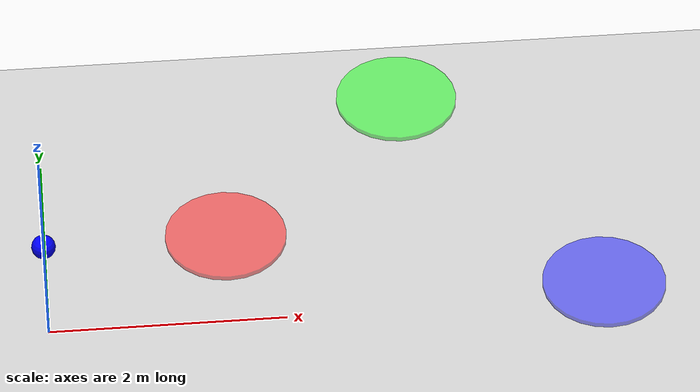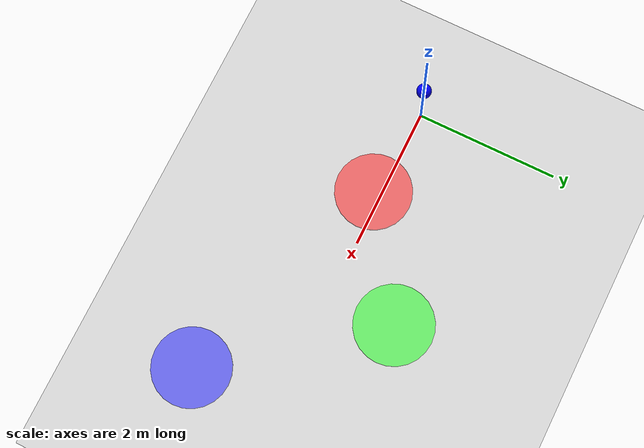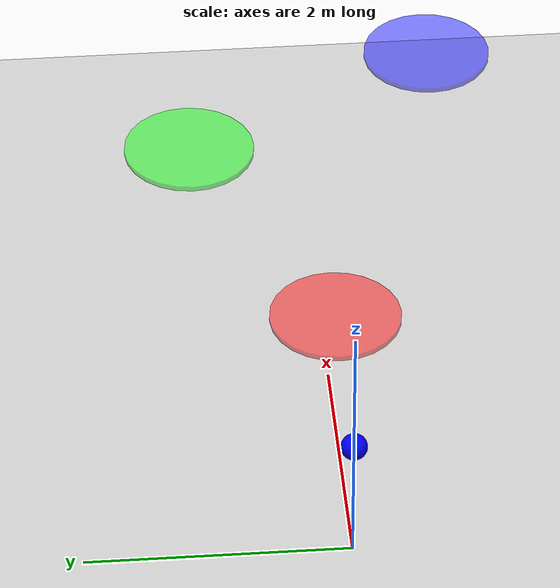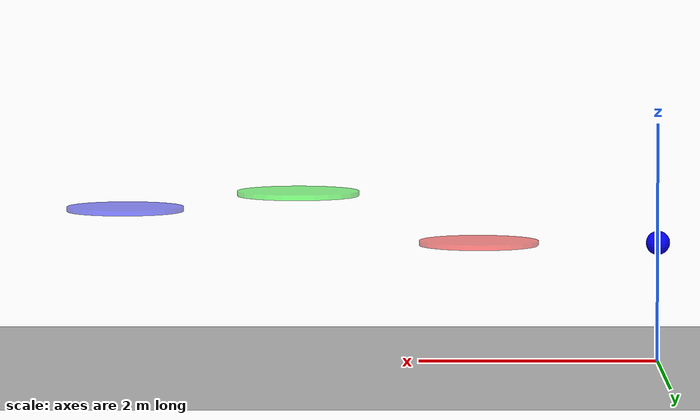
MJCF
# gate_world.xml

<mujoco model="skydio_gate">
    <compiler angle="degree" coordinate="local"/>
    <option gravity="0 0 -9.81"/>

    <worldbody>
        <!-- Ground -->
        <geom name="floor" type="plane" size="10 10 0.1" rgba="0.8 0.8 0.8 1"/>

        <!-- Drone -->
        <body name="drone" pos="0 0 1">
            <freejoint/>
            <geom type="sphere" size="0.1" rgba="0 0 1 1"/>
        </body>

        <!-- Gate 1 -->
        <body name="gate1" pos="1.5 0.0 1.0">
            <geom type="cylinder" size="0.5 0.02" rgba="1 0 0 0.5"/>
        </body>

        <!-- Gate 2 -->
        <body name="gate2" pos="3.0 1.0 1.5">
            <geom type="cylinder" size="0.5 0.02" rgba="0 1 0 0.5"/>
        </body>

        <!-- Gate 3 -->
        <body name="gate3" pos="4.5 -1.0 1.2">
            <geom type="cylinder" size="0.5 0.02" rgba="0 0 1 0.5"/>
        </body>
    </worldbody>
</mujoco>
